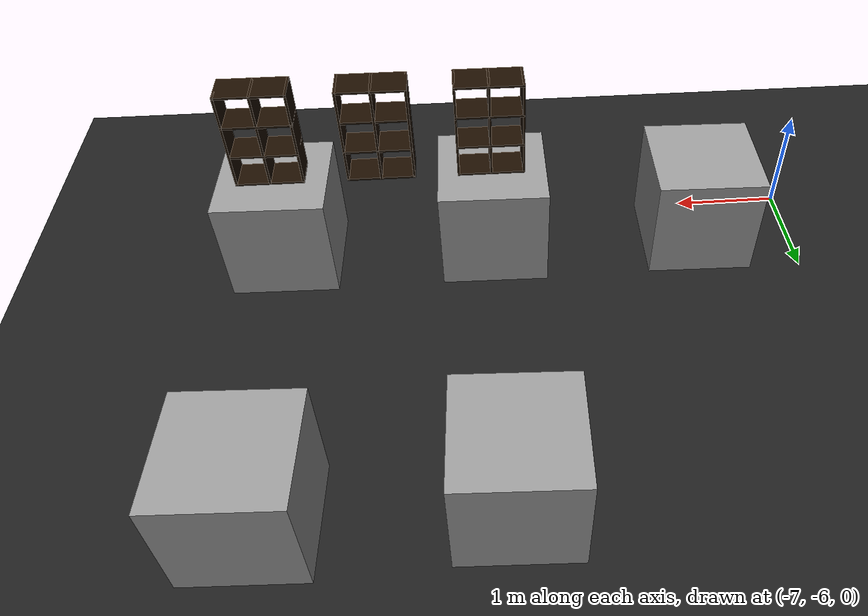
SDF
<sdf version="1.7">
 <world name="default">
  <model name="ground_plane">
   <static>1</static>
   <link name="link">
    <collision name="collision">
     <geometry><plane><normal>0 0 1</normal><size>100 100</size></plane></geometry>
     <surface><friction><ode><mu>100</mu><mu2>50</mu2></ode></friction></surface>
    </collision>
    <visual name="visual">
     <cast_shadows>0</cast_shadows>
     <geometry><plane><normal>0 0 1</normal><size>100 100</size></plane></geometry>
     <material>
      <script><uri>file://media/materials/scripts/gazebo.material</uri><name>Gazebo/BlackTransparent</name></script>
     </material>
    </visual>
   </link>
  </model>
  <model name="unit_box_3">
   <pose>-6.01693 -5.49594 0.5 0 0 -0.024671</pose>
   <link name="link">
    <inertial>
     <mass>1</mass>
     <inertia>
      <ixx>0.166667</ixx>
      <ixy>0</ixy>
      <ixz>0</ixz>
      <iyy>0.166667</iyy>
      <iyz>0</iyz>
      <izz>0.166667</izz>
     </inertia>
    </inertial>
    <collision name="collision"><geometry><box><size>1 1 1</size></box></geometry></collision>
    <visual name="visual">
     <geometry><box><size>1 1 1</size></box></geometry>
     <material>
      <script><name>Gazebo/Grey</name><uri>file://media/materials/scripts/gazebo.material</uri></script>
     </material>
    </visual>
   </link>
  </model>
  <model name="unit_box_22">
   <pose>-4.02326 -2.50724 0.5 0 -0 -0.042544</pose>
   <link name="link">
    <inertial>
     <mass>1</mass>
     <inertia>
      <ixx>0.166667</ixx>
      <ixy>0</ixy>
      <ixz>0</ixz>
      <iyy>0.166667</iyy>
      <iyz>0</iyz>
      <izz>0.166667</izz>
     </inertia>
    </inertial>
    <collision name="collision"><geometry><box><size>1 1 1</size></box></geometry></collision>
    <visual name="visual">
     <geometry><box><size>1 1 1</size></box></geometry>
     <material>
      <script><name>Gazebo/Grey</name><uri>file://media/materials/scripts/gazebo.material</uri></script>
     </material>
    </visual>
   </link>
  </model>
  <model name="unit_box_23">
   <pose>-2.0206 -2.50243 0.5 0 0 -0.042386</pose>
   <link name="link">
    <inertial>
     <mass>1</mass>
     <inertia>
      <ixx>0.166667</ixx>
      <ixy>0</ixy>
      <ixz>0</ixz>
      <iyy>0.166667</iyy>
      <iyz>0</iyz>
      <izz>0.166667</izz>
     </inertia>
    </inertial>
    <collision name="collision"><geometry><box><size>1 1 1</size></box></geometry></collision>
    <visual name="visual">
     <geometry><box><size>1 1 1</size></box></geometry>
     <material>
      <script><name>Gazebo/Grey</name><uri>file://media/materials/scripts/gazebo.material</uri></script>
     </material>
    </visual>
   </link>
  </model>
  <model name="unit_box_28">
   <pose>-4.01046 -5.49396 0.5 0 -0 -0.019734</pose>
   <link name="link">
    <inertial>
     <mass>1</mass>
     <inertia>
      <ixx>0.166667</ixx>
      <ixy>0</ixy>
      <ixz>0</ixz>
      <iyy>0.166667</iyy>
      <iyz>0</iyz>
      <izz>0.166667</izz>
     </inertia>
    </inertial>
    <collision name="collision"><geometry><box><size>1 1 1</size></box></geometry></collision>
    <visual name="visual">
     <geometry><box><size>1 1 1</size></box></geometry>
     <material>
      <script><name>Gazebo/Grey</name><uri>file://media/materials/scripts/gazebo.material</uri></script>
     </material>
    </visual>
   </link>
  </model>
  <model name="unit_box_29">
   <pose>-2.00685 -5.49705 0.5 0 0 -0.022508</pose>
   <link name="link">
    <inertial>
     <mass>1</mass>
     <inertia>
      <ixx>0.166667</ixx>
      <ixy>0</ixy>
      <ixz>0</ixz>
      <iyy>0.166667</iyy>
      <iyz>0</iyz>
      <izz>0.166667</izz>
     </inertia>
    </inertial>
    <collision name="collision"><geometry><box><size>1 1 1</size></box></geometry></collision>
    <visual name="visual">
     <geometry><box><size>1 1 1</size></box></geometry>
     <material>
      <script><name>Gazebo/Grey</name><uri>file://media/materials/scripts/gazebo.material</uri></script>
     </material>
    </visual>
   </link>
  </model>
  <model name="6_Cube_StorageE_clone_61">
   <link name="Wall_0">
    <pose>0 0 0.01 0 -0 0</pose>
    <inertial>
     <mass>1.6201</mass>
     <inertia><ixx>0.0119</ixx><iyy>0.0631</iyy><izz>0.0513</izz><ixy>0</ixy><ixz>0</ixz><iyz>0</iyz></inertia>
    </inertial>
    <collision name="Wall_0_Collision"><geometry><box><size>0.616 0.296 0.02</size></box></geometry></collision>
    <visual name="Wall_0_Visual">
     <geometry><box><size>0.616 0.296 0.02</size></box></geometry>
     <material>
      <script><uri>file://media/materials/scripts/gazebo.material</uri><name>Gazebo/Grey</name></script>
      <ambient>0.105882 0.0509804 0 1</ambient>
     </material>
    </visual>
   </link>
   <joint name="0_2" type="fixed">
    <pose>-0.308 0 0 0 -0 0</pose>
    <parent>Wall_2</parent>
    <child>Wall_0</child>
    <axis><xyz>1 0 0</xyz><limit><lower>-1e+16</lower><upper>1e+16</upper></limit></axis>
   </joint>
   <joint name="0_12" type="fixed">
    <parent>Wall_12</parent>
    <child>Wall_0</child>
    <axis><xyz>0 0 1</xyz><limit><lower>-1e+16</lower><upper>1e+16</upper></limit></axis>
   </joint>
   <joint name="0_4" type="fixed">
    <pose>0.308 0 0 0 -0 0</pose>
    <parent>Wall_4</parent>
    <child>Wall_0</child>
    <axis><xyz>1 0 0</xyz><limit><lower>-1e+16</lower><upper>1e+16</upper></limit></axis>
   </joint>
   <link name="Wall_10">
    <pose>0 0 0.61 0 -0 0</pose>
    <inertial>
     <mass>1.6201</mass>
     <inertia><ixx>0.0119</ixx><iyy>0.0631</iyy><izz>0.0513</izz><ixy>0</ixy><ixz>0</ixz><iyz>0</iyz></inertia>
    </inertial>
    <collision name="Wall_10_Collision"><geometry><box><size>0.616 0.296 0.02</size></box></geometry></collision>
    <visual name="Wall_10_Visual">
     <geometry><box><size>0.616 0.296 0.02</size></box></geometry>
     <material>
      <script><uri>file://media/materials/scripts/gazebo.material</uri><name>Gazebo/Grey</name></script>
      <ambient>0.105882 0.0509804 0 1</ambient>
     </material>
    </visual>
   </link>
   <joint name="10_2" type="fixed">
    <pose>-0.308 0 0 0 -0 0</pose>
    <parent>Wall_2</parent>
    <child>Wall_10</child>
    <axis><xyz>1 0 0</xyz><limit><lower>-1e+16</lower><upper>1e+16</upper></limit></axis>
   </joint>
   <joint name="10_12" type="fixed">
    <parent>Wall_12</parent>
    <child>Wall_10</child>
    <axis><xyz>0 0 1</xyz><limit><lower>-1e+16</lower><upper>1e+16</upper></limit></axis>
   </joint>
   <joint name="10_4" type="fixed">
    <pose>0.308 0 0 0 -0 0</pose>
    <parent>Wall_4</parent>
    <child>Wall_10</child>
    <axis><xyz>1 0 0</xyz><limit><lower>-1e+16</lower><upper>1e+16</upper></limit></axis>
   </joint>
   <link name="Wall_12">
    <pose>0 0 0.4575 0 -0 0</pose>
    <inertial>
     <mass>2.4065</mass>
     <inertia><ixx>0.0177</ixx><iyy>0.1855</iyy><izz>0.168</izz><ixy>0</ixy><ixz>0</ixz><iyz>0</iyz></inertia>
    </inertial>
    <collision name="Wall_12_Collision"><geometry><box><size>0.02 0.296 0.915</size></box></geometry></collision>
    <visual name="Wall_12_Visual">
     <geometry><box><size>0.02 0.296 0.915</size></box></geometry>
     <material>
      <script><uri>file://media/materials/scripts/gazebo.material</uri><name>Gazebo/Grey</name></script>
      <ambient>0.105882 0.0509804 0 1</ambient>
     </material>
    </visual>
   </link>
   <link name="Wall_2">
    <pose>-0.298 0 0.4575 0 -0 0</pose>
    <inertial>
     <mass>2.4065</mass>
     <inertia><ixx>0.0177</ixx><iyy>0.1855</iyy><izz>0.168</izz><ixy>0</ixy><ixz>0</ixz><iyz>0</iyz></inertia>
    </inertial>
    <collision name="Wall_2_Collision"><geometry><box><size>0.02 0.296 0.915</size></box></geometry></collision>
    <visual name="Wall_2_Visual">
     <geometry><box><size>0.02 0.296 0.915</size></box></geometry>
     <material>
      <script><uri>file://media/materials/scripts/gazebo.material</uri><name>Gazebo/Grey</name></script>
      <ambient>0.105882 0.0509804 0 1</ambient>
     </material>
    </visual>
   </link>
   <link name="Wall_4">
    <pose>0.298 0 0.4575 0 -0 0</pose>
    <inertial>
     <mass>2.4065</mass>
     <inertia><ixx>0.0177</ixx><iyy>0.1855</iyy><izz>0.168</izz><ixy>0</ixy><ixz>0</ixz><iyz>0</iyz></inertia>
    </inertial>
    <collision name="Wall_4_Collision"><geometry><box><size>0.02 0.296 0.915</size></box></geometry></collision>
    <visual name="Wall_4_Visual">
     <geometry><box><size>0.02 0.296 0.915</size></box></geometry>
     <material>
      <script><uri>file://media/materials/scripts/gazebo.material</uri><name>Gazebo/Grey</name></script>
      <ambient>0.105882 0.0509804 0 1</ambient>
     </material>
    </visual>
   </link>
   <link name="Wall_6">
    <pose>0 0 0.905 0 -0 0</pose>
    <inertial>
     <mass>1.6201</mass>
     <inertia><ixx>0.0119</ixx><iyy>0.0631</iyy><izz>0.0513</izz><ixy>0</ixy><ixz>0</ixz><iyz>0</iyz></inertia>
    </inertial>
    <collision name="Wall_6_Collision"><geometry><box><size>0.616 0.296 0.02</size></box></geometry></collision>
    <visual name="Wall_6_Visual">
     <geometry><box><size>0.616 0.296 0.02</size></box></geometry>
     <material>
      <script><uri>file://media/materials/scripts/gazebo.material</uri><name>Gazebo/Grey</name></script>
      <ambient>0.105882 0.0509804 0 1</ambient>
     </material>
    </visual>
   </link>
   <joint name="6_2" type="fixed">
    <pose>-0.308 0 0 0 -0 0</pose>
    <parent>Wall_2</parent>
    <child>Wall_6</child>
    <axis><xyz>2 0 0</xyz><limit><lower>-1e+16</lower><upper>1e+16</upper></limit></axis>
   </joint>
   <joint name="6_12" type="fixed">
    <parent>Wall_12</parent>
    <child>Wall_6</child>
    <axis><xyz>0 0 1</xyz><limit><lower>-1e+16</lower><upper>1e+16</upper></limit></axis>
   </joint>
   <joint name="6_4" type="fixed">
    <pose>0.308 0 0 0 -0 0</pose>
    <parent>Wall_4</parent>
    <child>Wall_6</child>
    <axis><xyz>1 0 0</xyz><limit><lower>-1e+16</lower><upper>1e+16</upper></limit></axis>
   </joint>
   <link name="Wall_8">
    <pose>0 0 0.305 0 -0 0</pose>
    <inertial>
     <mass>1.6201</mass>
     <inertia><ixx>0.0119</ixx><iyy>0.0631</iyy><izz>0.0513</izz><ixy>0</ixy><ixz>0</ixz><iyz>0</iyz></inertia>
    </inertial>
    <collision name="Wall_8_Collision"><geometry><box><size>0.616 0.296 0.02</size></box></geometry></collision>
    <visual name="Wall_8_Visual">
     <geometry><box><size>0.616 0.296 0.02</size></box></geometry>
     <material>
      <script><uri>file://media/materials/scripts/gazebo.material</uri><name>Gazebo/Grey</name></script>
      <ambient>0.105882 0.0509804 0 1</ambient>
     </material>
    </visual>
   </link>
   <joint name="8_2" type="fixed">
    <pose>-0.308 0 0 0 -0 0</pose>
    <parent>Wall_2</parent>
    <child>Wall_8</child>
    <axis><xyz>1 0 0</xyz><limit><lower>-1e+16</lower><upper>1e+16</upper></limit></axis>
   </joint>
   <joint name="8_12" type="fixed">
    <parent>Wall_12</parent>
    <child>Wall_8</child>
    <axis><xyz>0 0 1</xyz><limit><lower>-1e+16</lower><upper>1e+16</upper></limit></axis>
   </joint>
   <joint name="8_4" type="fixed">
    <pose>0.308 0 0 0 -0 0</pose>
    <parent>Wall_4</parent>
    <child>Wall_8</child>
    <axis><xyz>1 0 0</xyz><limit><lower>-1e+16</lower><upper>1e+16</upper></limit></axis>
   </joint>
   <static>1</static>
   <pose>-4 -5.5 1.01 0 -0 0</pose>
  </model>
  <model name="6_Cube_StorageE_clone_62">
   <link name="Wall_0">
    <pose>0 0 0.01 0 -0 0</pose>
    <inertial>
     <mass>1.6201</mass>
     <inertia><ixx>0.0119</ixx><iyy>0.0631</iyy><izz>0.0513</izz><ixy>0</ixy><ixz>0</ixz><iyz>0</iyz></inertia>
    </inertial>
    <collision name="Wall_0_Collision"><geometry><box><size>0.616 0.296 0.02</size></box></geometry></collision>
    <visual name="Wall_0_Visual">
     <geometry><box><size>0.616 0.296 0.02</size></box></geometry>
     <material>
      <script><uri>file://media/materials/scripts/gazebo.material</uri><name>Gazebo/Grey</name></script>
      <ambient>0.105882 0.0509804 0 1</ambient>
     </material>
    </visual>
   </link>
   <joint name="0_2" type="fixed">
    <pose>-0.308 0 0 0 -0 0</pose>
    <parent>Wall_2</parent>
    <child>Wall_0</child>
    <axis><xyz>1 0 0</xyz><limit><lower>-1e+16</lower><upper>1e+16</upper></limit></axis>
   </joint>
   <joint name="0_12" type="fixed">
    <parent>Wall_12</parent>
    <child>Wall_0</child>
    <axis><xyz>0 0 1</xyz><limit><lower>-1e+16</lower><upper>1e+16</upper></limit></axis>
   </joint>
   <joint name="0_4" type="fixed">
    <pose>0.308 0 0 0 -0 0</pose>
    <parent>Wall_4</parent>
    <child>Wall_0</child>
    <axis><xyz>1 0 0</xyz><limit><lower>-1e+16</lower><upper>1e+16</upper></limit></axis>
   </joint>
   <link name="Wall_10">
    <pose>0 0 0.61 0 -0 0</pose>
    <inertial>
     <mass>1.6201</mass>
     <inertia><ixx>0.0119</ixx><iyy>0.0631</iyy><izz>0.0513</izz><ixy>0</ixy><ixz>0</ixz><iyz>0</iyz></inertia>
    </inertial>
    <collision name="Wall_10_Collision"><geometry><box><size>0.616 0.296 0.02</size></box></geometry></collision>
    <visual name="Wall_10_Visual">
     <geometry><box><size>0.616 0.296 0.02</size></box></geometry>
     <material>
      <script><uri>file://media/materials/scripts/gazebo.material</uri><name>Gazebo/Grey</name></script>
      <ambient>0.105882 0.0509804 0 1</ambient>
     </material>
    </visual>
   </link>
   <joint name="10_2" type="fixed">
    <pose>-0.308 0 0 0 -0 0</pose>
    <parent>Wall_2</parent>
    <child>Wall_10</child>
    <axis><xyz>1 0 0</xyz><limit><lower>-1e+16</lower><upper>1e+16</upper></limit></axis>
   </joint>
   <joint name="10_12" type="fixed">
    <parent>Wall_12</parent>
    <child>Wall_10</child>
    <axis><xyz>0 0 1</xyz><limit><lower>-1e+16</lower><upper>1e+16</upper></limit></axis>
   </joint>
   <joint name="10_4" type="fixed">
    <pose>0.308 0 0 0 -0 0</pose>
    <parent>Wall_4</parent>
    <child>Wall_10</child>
    <axis><xyz>1 0 0</xyz><limit><lower>-1e+16</lower><upper>1e+16</upper></limit></axis>
   </joint>
   <link name="Wall_12">
    <pose>0 0 0.4575 0 -0 0</pose>
    <inertial>
     <mass>2.4065</mass>
     <inertia><ixx>0.0177</ixx><iyy>0.1855</iyy><izz>0.168</izz><ixy>0</ixy><ixz>0</ixz><iyz>0</iyz></inertia>
    </inertial>
    <collision name="Wall_12_Collision"><geometry><box><size>0.02 0.296 0.915</size></box></geometry></collision>
    <visual name="Wall_12_Visual">
     <geometry><box><size>0.02 0.296 0.915</size></box></geometry>
     <material>
      <script><uri>file://media/materials/scripts/gazebo.material</uri><name>Gazebo/Grey</name></script>
      <ambient>0.105882 0.0509804 0 1</ambient>
     </material>
    </visual>
   </link>
   <link name="Wall_2">
    <pose>-0.298 0 0.4575 0 -0 0</pose>
    <inertial>
     <mass>2.4065</mass>
     <inertia><ixx>0.0177</ixx><iyy>0.1855</iyy><izz>0.168</izz><ixy>0</ixy><ixz>0</ixz><iyz>0</iyz></inertia>
    </inertial>
    <collision name="Wall_2_Collision"><geometry><box><size>0.02 0.296 0.915</size></box></geometry></collision>
    <visual name="Wall_2_Visual">
     <geometry><box><size>0.02 0.296 0.915</size></box></geometry>
     <material>
      <script><uri>file://media/materials/scripts/gazebo.material</uri><name>Gazebo/Grey</name></script>
      <ambient>0.105882 0.0509804 0 1</ambient>
     </material>
    </visual>
   </link>
   <link name="Wall_4">
    <pose>0.298 0 0.4575 0 -0 0</pose>
    <inertial>
     <mass>2.4065</mass>
     <inertia><ixx>0.0177</ixx><iyy>0.1855</iyy><izz>0.168</izz><ixy>0</ixy><ixz>0</ixz><iyz>0</iyz></inertia>
    </inertial>
    <collision name="Wall_4_Collision"><geometry><box><size>0.02 0.296 0.915</size></box></geometry></collision>
    <visual name="Wall_4_Visual">
     <geometry><box><size>0.02 0.296 0.915</size></box></geometry>
     <material>
      <script><uri>file://media/materials/scripts/gazebo.material</uri><name>Gazebo/Grey</name></script>
      <ambient>0.105882 0.0509804 0 1</ambient>
     </material>
    </visual>
   </link>
   <link name="Wall_6">
    <pose>0 0 0.905 0 -0 0</pose>
    <inertial>
     <mass>1.6201</mass>
     <inertia><ixx>0.0119</ixx><iyy>0.0631</iyy><izz>0.0513</izz><ixy>0</ixy><ixz>0</ixz><iyz>0</iyz></inertia>
    </inertial>
    <collision name="Wall_6_Collision"><geometry><box><size>0.616 0.296 0.02</size></box></geometry></collision>
    <visual name="Wall_6_Visual">
     <geometry><box><size>0.616 0.296 0.02</size></box></geometry>
     <material>
      <script><uri>file://media/materials/scripts/gazebo.material</uri><name>Gazebo/Grey</name></script>
      <ambient>0.105882 0.0509804 0 1</ambient>
     </material>
    </visual>
   </link>
   <joint name="6_2" type="fixed">
    <pose>-0.308 0 0 0 -0 0</pose>
    <parent>Wall_2</parent>
    <child>Wall_6</child>
    <axis><xyz>2 0 0</xyz><limit><lower>-1e+16</lower><upper>1e+16</upper></limit></axis>
   </joint>
   <joint name="6_12" type="fixed">
    <parent>Wall_12</parent>
    <child>Wall_6</child>
    <axis><xyz>0 0 1</xyz><limit><lower>-1e+16</lower><upper>1e+16</upper></limit></axis>
   </joint>
   <joint name="6_4" type="fixed">
    <pose>0.308 0 0 0 -0 0</pose>
    <parent>Wall_4</parent>
    <child>Wall_6</child>
    <axis><xyz>1 0 0</xyz><limit><lower>-1e+16</lower><upper>1e+16</upper></limit></axis>
   </joint>
   <link name="Wall_8">
    <pose>0 0 0.305 0 -0 0</pose>
    <inertial>
     <mass>1.6201</mass>
     <inertia><ixx>0.0119</ixx><iyy>0.0631</iyy><izz>0.0513</izz><ixy>0</ixy><ixz>0</ixz><iyz>0</iyz></inertia>
    </inertial>
    <collision name="Wall_8_Collision"><geometry><box><size>0.616 0.296 0.02</size></box></geometry></collision>
    <visual name="Wall_8_Visual">
     <geometry><box><size>0.616 0.296 0.02</size></box></geometry>
     <material>
      <script><uri>file://media/materials/scripts/gazebo.material</uri><name>Gazebo/Grey</name></script>
      <ambient>0.105882 0.0509804 0 1</ambient>
     </material>
    </visual>
   </link>
   <joint name="8_2" type="fixed">
    <pose>-0.308 0 0 0 -0 0</pose>
    <parent>Wall_2</parent>
    <child>Wall_8</child>
    <axis><xyz>1 0 0</xyz><limit><lower>-1e+16</lower><upper>1e+16</upper></limit></axis>
   </joint>
   <joint name="8_12" type="fixed">
    <parent>Wall_12</parent>
    <child>Wall_8</child>
    <axis><xyz>0 0 1</xyz><limit><lower>-1e+16</lower><upper>1e+16</upper></limit></axis>
   </joint>
   <joint name="8_4" type="fixed">
    <pose>0.308 0 0 0 -0 0</pose>
    <parent>Wall_4</parent>
    <child>Wall_8</child>
    <axis><xyz>1 0 0</xyz><limit><lower>-1e+16</lower><upper>1e+16</upper></limit></axis>
   </joint>
   <static>1</static>
   <pose>-3 -5.5 1.01 0 -0 0</pose>
  </model>
  <model name="6_Cube_StorageE_clone_63">
   <link name="Wall_0">
    <pose>0 0 0.01 0 -0 0</pose>
    <inertial>
     <mass>1.6201</mass>
     <inertia><ixx>0.0119</ixx><iyy>0.0631</iyy><izz>0.0513</izz><ixy>0</ixy><ixz>0</ixz><iyz>0</iyz></inertia>
    </inertial>
    <collision name="Wall_0_Collision"><geometry><box><size>0.616 0.296 0.02</size></box></geometry></collision>
    <visual name="Wall_0_Visual">
     <geometry><box><size>0.616 0.296 0.02</size></box></geometry>
     <material>
      <script><uri>file://media/materials/scripts/gazebo.material</uri><name>Gazebo/Grey</name></script>
      <ambient>0.105882 0.0509804 0 1</ambient>
     </material>
    </visual>
   </link>
   <joint name="0_2" type="fixed">
    <pose>-0.308 0 0 0 -0 0</pose>
    <parent>Wall_2</parent>
    <child>Wall_0</child>
    <axis><xyz>1 0 0</xyz><limit><lower>-1e+16</lower><upper>1e+16</upper></limit></axis>
   </joint>
   <joint name="0_12" type="fixed">
    <parent>Wall_12</parent>
    <child>Wall_0</child>
    <axis><xyz>0 0 1</xyz><limit><lower>-1e+16</lower><upper>1e+16</upper></limit></axis>
   </joint>
   <joint name="0_4" type="fixed">
    <pose>0.308 0 0 0 -0 0</pose>
    <parent>Wall_4</parent>
    <child>Wall_0</child>
    <axis><xyz>1 0 0</xyz><limit><lower>-1e+16</lower><upper>1e+16</upper></limit></axis>
   </joint>
   <link name="Wall_10">
    <pose>0 0 0.61 0 -0 0</pose>
    <inertial>
     <mass>1.6201</mass>
     <inertia><ixx>0.0119</ixx><iyy>0.0631</iyy><izz>0.0513</izz><ixy>0</ixy><ixz>0</ixz><iyz>0</iyz></inertia>
    </inertial>
    <collision name="Wall_10_Collision"><geometry><box><size>0.616 0.296 0.02</size></box></geometry></collision>
    <visual name="Wall_10_Visual">
     <geometry><box><size>0.616 0.296 0.02</size></box></geometry>
     <material>
      <script><uri>file://media/materials/scripts/gazebo.material</uri><name>Gazebo/Grey</name></script>
      <ambient>0.105882 0.0509804 0 1</ambient>
     </material>
    </visual>
   </link>
   <joint name="10_2" type="fixed">
    <pose>-0.308 0 0 0 -0 0</pose>
    <parent>Wall_2</parent>
    <child>Wall_10</child>
    <axis><xyz>1 0 0</xyz><limit><lower>-1e+16</lower><upper>1e+16</upper></limit></axis>
   </joint>
   <joint name="10_12" type="fixed">
    <parent>Wall_12</parent>
    <child>Wall_10</child>
    <axis><xyz>0 0 1</xyz><limit><lower>-1e+16</lower><upper>1e+16</upper></limit></axis>
   </joint>
   <joint name="10_4" type="fixed">
    <pose>0.308 0 0 0 -0 0</pose>
    <parent>Wall_4</parent>
    <child>Wall_10</child>
    <axis><xyz>1 0 0</xyz><limit><lower>-1e+16</lower><upper>1e+16</upper></limit></axis>
   </joint>
   <link name="Wall_12">
    <pose>0 0 0.4575 0 -0 0</pose>
    <inertial>
     <mass>2.4065</mass>
     <inertia><ixx>0.0177</ixx><iyy>0.1855</iyy><izz>0.168</izz><ixy>0</ixy><ixz>0</ixz><iyz>0</iyz></inertia>
    </inertial>
    <collision name="Wall_12_Collision"><geometry><box><size>0.02 0.296 0.915</size></box></geometry></collision>
    <visual name="Wall_12_Visual">
     <geometry><box><size>0.02 0.296 0.915</size></box></geometry>
     <material>
      <script><uri>file://media/materials/scripts/gazebo.material</uri><name>Gazebo/Grey</name></script>
      <ambient>0.105882 0.0509804 0 1</ambient>
     </material>
    </visual>
   </link>
   <link name="Wall_2">
    <pose>-0.298 0 0.4575 0 -0 0</pose>
    <inertial>
     <mass>2.4065</mass>
     <inertia><ixx>0.0177</ixx><iyy>0.1855</iyy><izz>0.168</izz><ixy>0</ixy><ixz>0</ixz><iyz>0</iyz></inertia>
    </inertial>
    <collision name="Wall_2_Collision"><geometry><box><size>0.02 0.296 0.915</size></box></geometry></collision>
    <visual name="Wall_2_Visual">
     <geometry><box><size>0.02 0.296 0.915</size></box></geometry>
     <material>
      <script><uri>file://media/materials/scripts/gazebo.material</uri><name>Gazebo/Grey</name></script>
      <ambient>0.105882 0.0509804 0 1</ambient>
     </material>
    </visual>
   </link>
   <link name="Wall_4">
    <pose>0.298 0 0.4575 0 -0 0</pose>
    <inertial>
     <mass>2.4065</mass>
     <inertia><ixx>0.0177</ixx><iyy>0.1855</iyy><izz>0.168</izz><ixy>0</ixy><ixz>0</ixz><iyz>0</iyz></inertia>
    </inertial>
    <collision name="Wall_4_Collision"><geometry><box><size>0.02 0.296 0.915</size></box></geometry></collision>
    <visual name="Wall_4_Visual">
     <geometry><box><size>0.02 0.296 0.915</size></box></geometry>
     <material>
      <script><uri>file://media/materials/scripts/gazebo.material</uri><name>Gazebo/Grey</name></script>
      <ambient>0.105882 0.0509804 0 1</ambient>
     </material>
    </visual>
   </link>
   <link name="Wall_6">
    <pose>0 0 0.905 0 -0 0</pose>
    <inertial>
     <mass>1.6201</mass>
     <inertia><ixx>0.0119</ixx><iyy>0.0631</iyy><izz>0.0513</izz><ixy>0</ixy><ixz>0</ixz><iyz>0</iyz></inertia>
    </inertial>
    <collision name="Wall_6_Collision"><geometry><box><size>0.616 0.296 0.02</size></box></geometry></collision>
    <visual name="Wall_6_Visual">
     <geometry><box><size>0.616 0.296 0.02</size></box></geometry>
     <material>
      <script><uri>file://media/materials/scripts/gazebo.material</uri><name>Gazebo/Grey</name></script>
      <ambient>0.105882 0.0509804 0 1</ambient>
     </material>
    </visual>
   </link>
   <joint name="6_2" type="fixed">
    <pose>-0.308 0 0 0 -0 0</pose>
    <parent>Wall_2</parent>
    <child>Wall_6</child>
    <axis><xyz>2 0 0</xyz><limit><lower>-1e+16</lower><upper>1e+16</upper></limit></axis>
   </joint>
   <joint name="6_12" type="fixed">
    <parent>Wall_12</parent>
    <child>Wall_6</child>
    <axis><xyz>0 0 1</xyz><limit><lower>-1e+16</lower><upper>1e+16</upper></limit></axis>
   </joint>
   <joint name="6_4" type="fixed">
    <pose>0.308 0 0 0 -0 0</pose>
    <parent>Wall_4</parent>
    <child>Wall_6</child>
    <axis><xyz>1 0 0</xyz><limit><lower>-1e+16</lower><upper>1e+16</upper></limit></axis>
   </joint>
   <link name="Wall_8">
    <pose>0 0 0.305 0 -0 0</pose>
    <inertial>
     <mass>1.6201</mass>
     <inertia><ixx>0.0119</ixx><iyy>0.0631</iyy><izz>0.0513</izz><ixy>0</ixy><ixz>0</ixz><iyz>0</iyz></inertia>
    </inertial>
    <collision name="Wall_8_Collision"><geometry><box><size>0.616 0.296 0.02</size></box></geometry></collision>
    <visual name="Wall_8_Visual">
     <geometry><box><size>0.616 0.296 0.02</size></box></geometry>
     <material>
      <script><uri>file://media/materials/scripts/gazebo.material</uri><name>Gazebo/Grey</name></script>
      <ambient>0.105882 0.0509804 0 1</ambient>
     </material>
    </visual>
   </link>
   <joint name="8_2" type="fixed">
    <pose>-0.308 0 0 0 -0 0</pose>
    <parent>Wall_2</parent>
    <child>Wall_8</child>
    <axis><xyz>1 0 0</xyz><limit><lower>-1e+16</lower><upper>1e+16</upper></limit></axis>
   </joint>
   <joint name="8_12" type="fixed">
    <parent>Wall_12</parent>
    <child>Wall_8</child>
    <axis><xyz>0 0 1</xyz><limit><lower>-1e+16</lower><upper>1e+16</upper></limit></axis>
   </joint>
   <joint name="8_4" type="fixed">
    <pose>0.308 0 0 0 -0 0</pose>
    <parent>Wall_4</parent>
    <child>Wall_8</child>
    <axis><xyz>1 0 0</xyz><limit><lower>-1e+16</lower><upper>1e+16</upper></limit></axis>
   </joint>
   <static>1</static>
   <pose>-2 -5.5 1.01 0 -0 0</pose>
  </model>
 </world>
</sdf>
